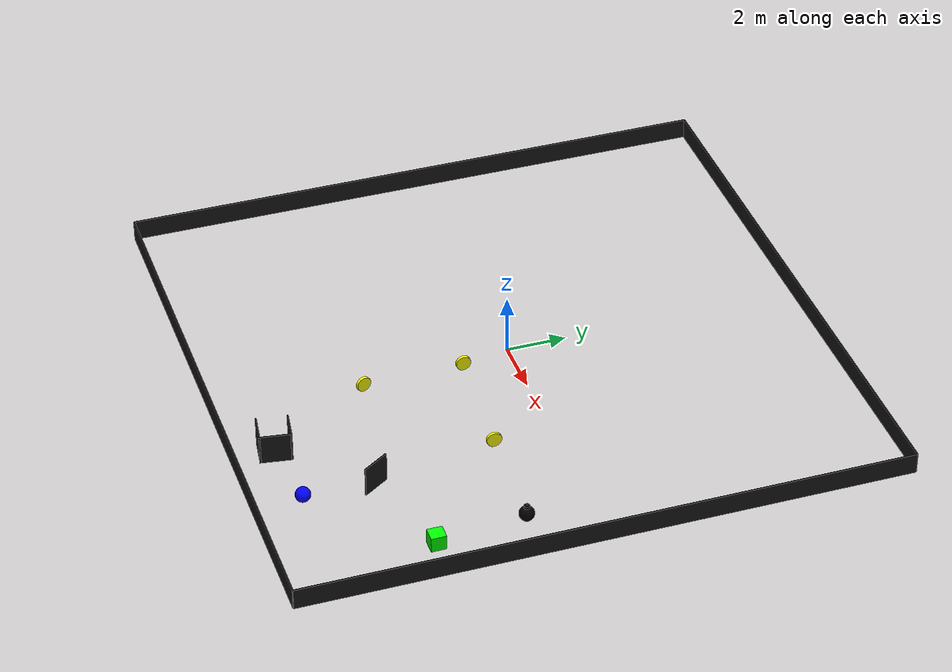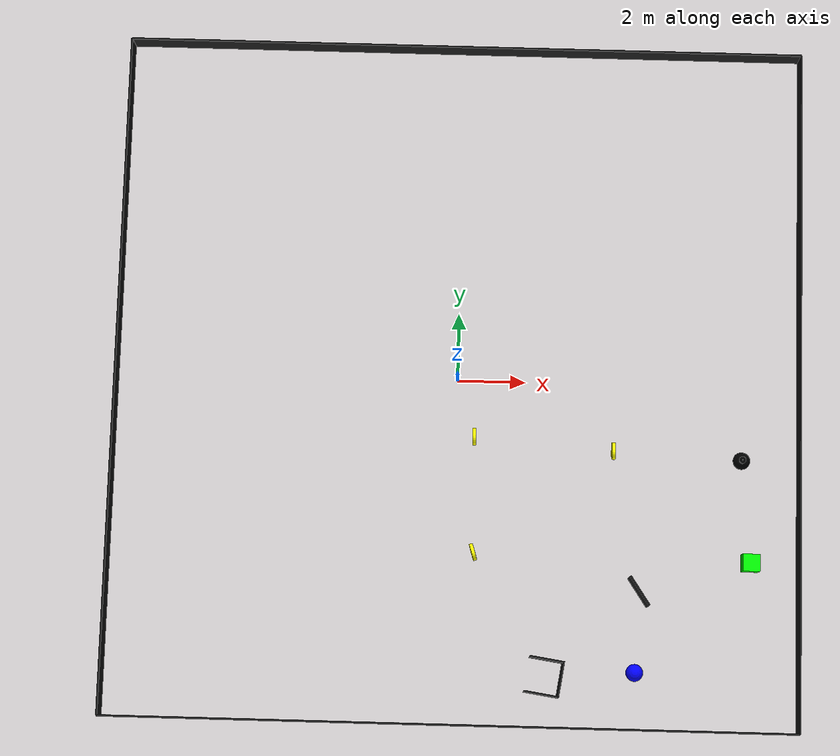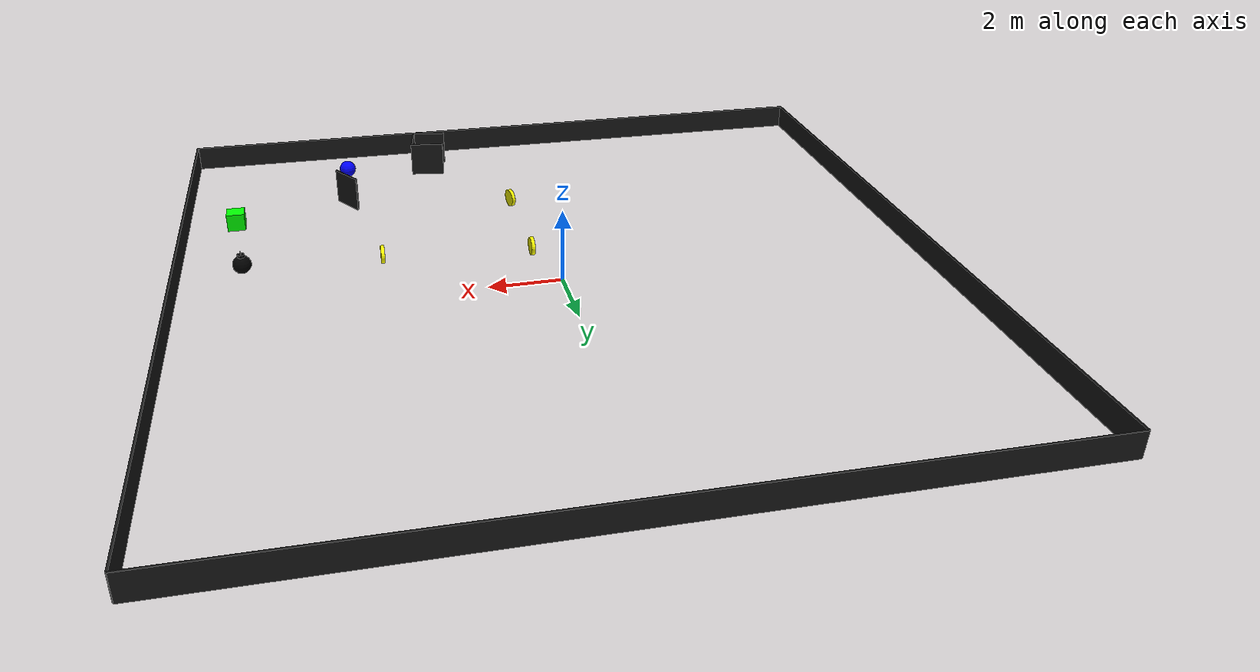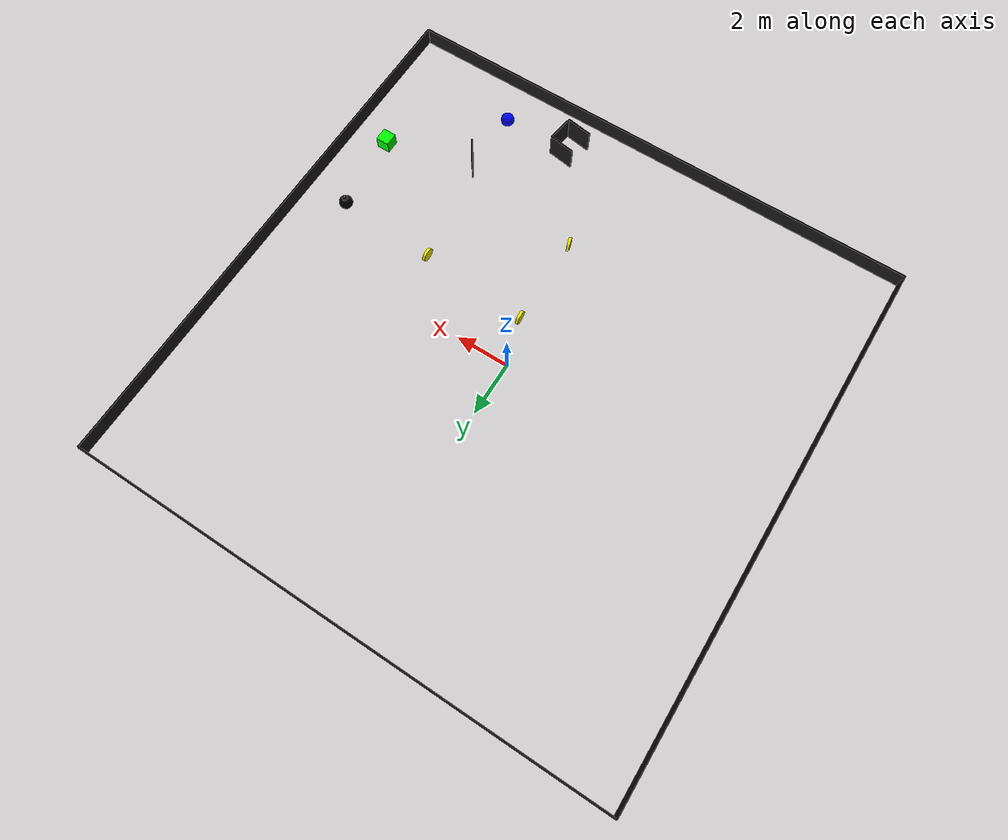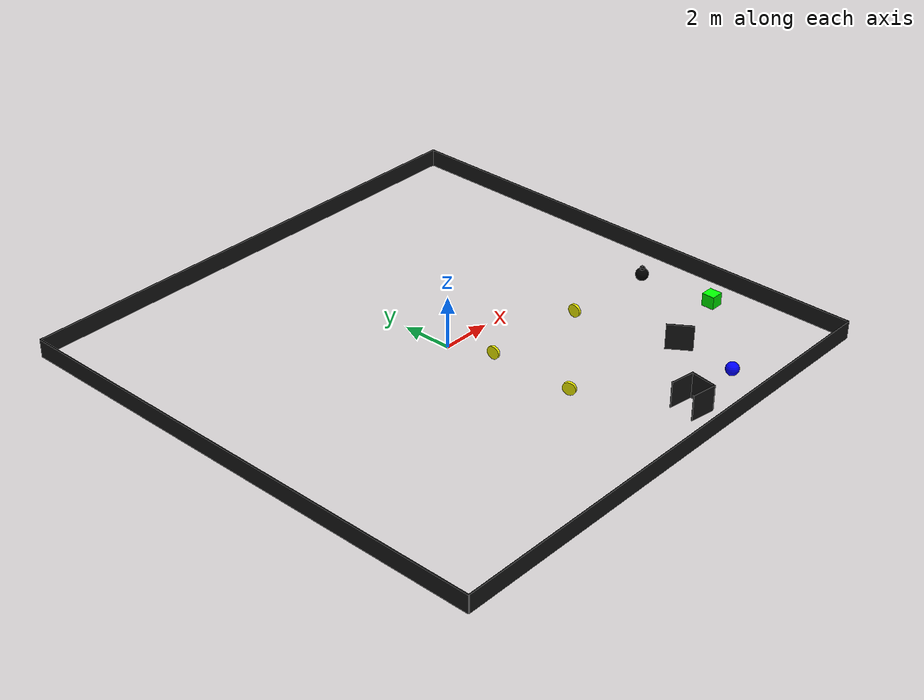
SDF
<sdf version="1.6">
 <world name="default">
  <model name="borders">
   <static>1</static>
   <link name="chassis_pos_x">
    <pose>10 0 0.35 0 -0 1.57079</pose>
    <collision name="collision_pos_x"><geometry><box><size>20 0.05 0.7</size></box></geometry></collision>
    <visual name="visual">
     <geometry><box><size>20 0.05 0.7</size></box></geometry>
     <material>
      <ambient>0.1 0.1 0.1 1</ambient>
      <diffuse>0.1 0.1 0.1 1</diffuse>
      <specular>0.1 0.1 0.1 1</specular>
      <emissive>0 0 0 0</emissive>
     </material>
    </visual>
    <sensor name="contact_sensor_1" type="contact">
     <plugin name="my_contact_plugin" filename="libgazebo_ros_bumper.so">
      <bumperTopicName>border_bumper</bumperTopicName>
      <frameName>world</frameName>
     </plugin>
     <contact><collision>collision_pos_x</collision><topic>__default_topic__</topic></contact>
    </sensor>
   </link>
   <link name="chassis_neg_x">
    <pose>-10 0 0.35 0 -0 1.57079</pose>
    <collision name="collision_neg_x"><geometry><box><size>20 0.05 0.7</size></box></geometry></collision>
    <visual name="visual">
     <geometry><box><size>20 0.05 0.7</size></box></geometry>
     <material>
      <ambient>0.1 0.1 0.1 1</ambient>
      <diffuse>0.1 0.1 0.1 1</diffuse>
      <specular>0.1 0.1 0.1 1</specular>
      <emissive>0 0 0 0</emissive>
     </material>
    </visual>
    <sensor name="contact_sensor_2" type="contact">
     <plugin name="my_contact_plugin" filename="libgazebo_ros_bumper.so">
      <bumperTopicName>border_bumper</bumperTopicName>
      <frameName>world</frameName>
     </plugin>
     <contact><collision>collision_neg_x</collision><topic>__default_topic__</topic></contact>
    </sensor>
   </link>
   <link name="chassis_pos_y">
    <pose>0 10 0.35 0 -0 0</pose>
    <collision name="collision_pos_y"><geometry><box><size>20 0.05 0.7</size></box></geometry></collision>
    <visual name="visual">
     <geometry><box><size>20 0.05 0.7</size></box></geometry>
     <material>
      <ambient>0.1 0.1 0.1 1</ambient>
      <diffuse>0.1 0.1 0.1 1</diffuse>
      <specular>0.1 0.1 0.1 1</specular>
      <emissive>0 0 0 0</emissive>
     </material>
    </visual>
    <sensor name="contact_sensor_3" type="contact">
     <plugin name="my_contact_plugin" filename="libgazebo_ros_bumper.so">
      <bumperTopicName>border_bumper</bumperTopicName>
      <frameName>world</frameName>
     </plugin>
     <contact><collision>collision_pos_y</collision><topic>__default_topic__</topic></contact>
    </sensor>
   </link>
   <link name="chassis_neg_y">
    <pose>0 -10 0.35 0 -0 0</pose>
    <collision name="collision_neg_y"><geometry><box><size>20 0.05 0.7</size></box></geometry></collision>
    <visual name="visual">
     <geometry><box><size>20 0.05 0.7</size></box></geometry>
     <material>
      <ambient>0.1 0.1 0.1 1</ambient>
      <diffuse>0.1 0.1 0.1 1</diffuse>
      <specular>0.1 0.1 0.1 1</specular>
      <emissive>0 0 0 0</emissive>
     </material>
    </visual>
    <sensor name="contact_sensor_4" type="contact">
     <plugin name="my_contact_plugin" filename="libgazebo_ros_bumper.so">
      <bumperTopicName>border_bumper</bumperTopicName>
      <frameName>world</frameName>
     </plugin>
     <contact><collision>collision_neg_y</collision><topic>__default_topic__</topic></contact>
    </sensor>
   </link>
  </model>
  <model name="coin_1">
   <link name="chassis">
    <pose>0 0 0.26 0 -0 0</pose>
    <collision name="box_collision">
     <geometry><sphere><radius>0.25</radius></sphere></geometry>
     <surface>
      <contact><collide_bitmask>1</collide_bitmask><ode><min_depth>10</min_depth><kp>1</kp></ode></contact>
     </surface>
    </collision>
    <visual name="visual">
     <pose>0 0 0 0 1.57 0</pose>
     <geometry><cylinder><radius>0.25</radius><length>0.1</length></cylinder></geometry>
     <material>
      <ambient>1 1 0 1</ambient>
      <diffuse>1 1 0 1</diffuse>
      <specular>0.1 0.1 0.1 1</specular>
      <emissive>0 0 0 0</emissive>
     </material>
    </visual>
    <sensor name="contact_sensor_1" type="contact">
     <plugin name="my_contact_plugin" filename="libgazebo_ros_bumper.so">
      <bumperTopicName>coin_bumper</bumperTopicName>
      <frameName>world</frameName>
     </plugin>
     <contact><collision>box_collision</collision><topic>__default_topic__</topic></contact>
    </sensor>
    <inertial>
     <inertia><ixx>1</ixx><ixy>0</ixy><ixz>0</ixz><iyy>1</iyy><iyz>0</iyz><izz>1</izz></inertia>
     <mass>1</mass>
    </inertial>
   </link>
   <joint name="coin_hinge" type="revolute">
    <pose>0 0 0.26 0 -0 0</pose>
    <child>chassis</child>
    <parent>world</parent>
    <axis>
     <xyz>0 0 1</xyz>
     <use_parent_model_frame>1</use_parent_model_frame>
     <limit><lower>-1e+16</lower><upper>1e+16</upper></limit>
     <dynamics><spring_reference>0</spring_reference><spring_stiffness>0</spring_stiffness></dynamics>
    </axis>
   </joint>
   <pose>0.535499 -1.67279 0 0 0 -3.09345</pose>
  </model>
  <model name="coin_2">
   <link name="chassis">
    <pose>0 0 0.26 0 -0 0</pose>
    <collision name="box_collision">
     <geometry><sphere><radius>0.25</radius></sphere></geometry>
     <surface>
      <contact><collide_bitmask>1</collide_bitmask><ode><min_depth>10</min_depth><kp>1</kp></ode></contact>
     </surface>
    </collision>
    <visual name="visual">
     <pose>0 0 0 0 1.57 0</pose>
     <geometry><cylinder><radius>0.25</radius><length>0.1</length></cylinder></geometry>
     <material>
      <ambient>1 1 0 1</ambient>
      <diffuse>1 1 0 1</diffuse>
      <specular>0.1 0.1 0.1 1</specular>
      <emissive>0 0 0 0</emissive>
     </material>
    </visual>
    <sensor name="contact_sensor_1" type="contact">
     <plugin name="my_contact_plugin" filename="libgazebo_ros_bumper.so">
      <bumperTopicName>coin_bumper</bumperTopicName>
      <frameName>world</frameName>
     </plugin>
     <contact><collision>box_collision</collision><topic>__default_topic__</topic></contact>
    </sensor>
    <inertial>
     <inertia><ixx>1</ixx><ixy>0</ixy><ixz>0</ixz><iyy>1</iyy><iyz>0</iyz><izz>1</izz></inertia>
     <mass>1</mass>
    </inertial>
   </link>
   <joint name="coin_hinge" type="revolute">
    <pose>0 0 0.26 0 -0 0</pose>
    <child>chassis</child>
    <parent>world</parent>
    <axis>
     <xyz>0 0 1</xyz>
     <use_parent_model_frame>1</use_parent_model_frame>
     <limit><lower>-1e+16</lower><upper>1e+16</upper></limit>
     <dynamics><spring_reference>0</spring_reference><spring_stiffness>0</spring_stiffness></dynamics>
    </axis>
   </joint>
   <pose>0.581038 -5.03889 0 0 0 -2.85301</pose>
  </model>
  <model name="wall_1_0">
   <static>1</static>
   <link name="chassis">
    <pose>0 0 0.5 0 -0 0</pose>
    <collision name="barrier_collision"><geometry><box><size>1 0.05 1</size></box></geometry></collision>
    <visual name="visual">
     <geometry><box><size>1 0.05 1</size></box></geometry>
     <material>
      <ambient>0.1 0.1 0.1 1</ambient>
      <diffuse>0.1 0.1 0.1 1</diffuse>
      <specular>0.1 0.1 0.1 1</specular>
      <emissive>0 0 0 0</emissive>
     </material>
    </visual>
    <sensor name="contact_sensor_1" type="contact">
     <plugin name="my_contact_plugin" filename="libgazebo_ros_bumper.so">
      <bumperTopicName>obstacle_bumper</bumperTopicName>
      <frameName>world</frameName>
     </plugin>
     <contact><collision>barrier_collision</collision><topic>__default_topic__</topic></contact>
    </sensor>
   </link>
   <pose>5.37964 -6.06897 0 0 0 -0.982297</pose>
  </model>
  <model name="wall_3_0">
   <static>1</static>
   <link name="chassis">
    <pose>0 0 0.5 0 -0 0</pose>
    <collision name="collision"><geometry><box><size>1 0.05 1</size></box></geometry></collision>
    <visual name="visual">
     <geometry><box><size>1 0.05 1</size></box></geometry>
     <material>
      <ambient>0.1 0.1 0.1 1</ambient>
      <diffuse>0.1 0.1 0.1 1</diffuse>
      <specular>0.1 0.1 0.1 1</specular>
      <emissive>0 0 0 0</emissive>
     </material>
    </visual>
    <collision name="collision2">
     <pose>-0.475 0.525 0 0 -0 1.57</pose>
     <geometry><box><size>1 0.05 1</size></box></geometry>
    </collision>
    <visual name="visual2">
     <pose>-0.475 0.525 0 0 -0 1.57</pose>
     <geometry><box><size>1 0.05 1</size></box></geometry>
     <material>
      <ambient>0.1 0.1 0.1 1</ambient>
      <diffuse>0.1 0.1 0.1 1</diffuse>
      <specular>0.1 0.1 0.1 1</specular>
      <emissive>0 0 0 0</emissive>
     </material>
    </visual>
    <collision name="collision3">
     <pose>0 1 0 0 -0 0</pose>
     <geometry><box><size>1 0.05 1</size></box></geometry>
    </collision>
    <visual name="visual3">
     <pose>0 1 0 0 -0 0</pose>
     <geometry><box><size>1 0.05 1</size></box></geometry>
     <material>
      <ambient>0.1 0.1 0.1 1</ambient>
      <diffuse>0.1 0.1 0.1 1</diffuse>
      <specular>0.1 0.1 0.1 1</specular>
      <emissive>0 0 0 0</emissive>
     </material>
    </visual>
    <sensor name="contact_sensor_1" type="contact">
     <plugin name="my_contact_plugin" filename="libgazebo_ros_bumper.so">
      <bumperTopicName>obstacle_bumper</bumperTopicName>
      <frameName>world</frameName>
     </plugin>
     <contact><collision>collision</collision><topic>__default_topic__</topic></contact>
    </sensor>
    <sensor name="contact_sensor_2" type="contact">
     <plugin name="my_contact_plugin" filename="libgazebo_ros_bumper.so">
      <bumperTopicName>obstacle_bumper</bumperTopicName>
      <frameName>world</frameName>
     </plugin>
     <contact><collision>collision2</collision><topic>__default_topic__</topic></contact>
    </sensor>
    <sensor name="contact_sensor_3" type="contact">
     <plugin name="my_contact_plugin" filename="libgazebo_ros_bumper.so">
      <bumperTopicName>obstacle_bumper</bumperTopicName>
      <frameName>world</frameName>
     </plugin>
     <contact><collision>collision3</collision><topic>__default_topic__</topic></contact>
    </sensor>
   </link>
   <pose>2.77335 -8.07554 0 0 -0 2.99118</pose>
  </model>
  <model name="bomb_5">
   <link name="chassis">
    <pose>0 0 0.25 0 -0 0</pose>
    <collision name="box_collision">
     <geometry><sphere><radius>0.25</radius></sphere></geometry>
     <surface>
      <contact><collide_bitmask>1</collide_bitmask><ode><min_depth>10</min_depth><kp>1</kp></ode></contact>
     </surface>
    </collision>
    <visual name="visual">
     <pose>0 0 0.2 0 -0 0</pose>
     <geometry><cylinder><radius>0.1</radius><length>0.2</length></cylinder></geometry>
     <material>
      <ambient>0 0 0 1</ambient>
      <diffuse>0 0 0 1</diffuse>
      <specular>0.1 0.1 0.1 1</specular>
      <emissive>0 0 0 0</emissive>
     </material>
    </visual>
    <visual name="visual2">
     <geometry><sphere><radius>0.25</radius></sphere></geometry>
     <material>
      <ambient>0 0 0 1</ambient>
      <diffuse>0 0 0 1</diffuse>
      <specular>0.1 0.1 0.1 1</specular>
      <emissive>0 0 0 0</emissive>
     </material>
    </visual>
    <visual name="visual3">
     <pose>0 0 0.3 0 -0 0</pose>
     <geometry><cylinder><radius>0.01</radius><length>0.2</length></cylinder></geometry>
     <material>
      <ambient>1 1 1 1</ambient>
      <diffuse>1 1 1 1</diffuse>
      <specular>0.1 0.1 0.1 1</specular>
      <emissive>0 0 0 0</emissive>
     </material>
    </visual>
    <sensor name="contact_sensor_1" type="contact">
     <plugin name="my_contact_plugin" filename="libgazebo_ros_bumper.so">
      <bumperTopicName>bomb_bumper</bumperTopicName>
      <frameName>world</frameName>
     </plugin>
     <contact><collision>box_collision</collision><topic>__default_topic__</topic></contact>
    </sensor>
    <inertial>
     <inertia><ixx>1</ixx><ixy>0</ixy><ixz>0</ixz><iyy>1</iyy><iyz>0</iyz><izz>1</izz></inertia>
     <mass>1</mass>
    </inertial>
   </link>
   <joint name="bomb_hinge" type="revolute">
    <pose>0 0 0.2 0 -0 0</pose>
    <child>chassis</child>
    <parent>world</parent>
    <axis>
     <xyz>0 0 0</xyz>
     <use_parent_model_frame>1</use_parent_model_frame>
     <limit><lower>-1e+16</lower><upper>1e+16</upper></limit>
     <dynamics><spring_reference>0</spring_reference><spring_stiffness>0</spring_stiffness></dynamics>
    </axis>
   </joint>
   <pose>8.33782 -2.17598 0 0 -0 0</pose>
  </model>
  <model name="coin_0">
   <link name="chassis">
    <pose>0 0 0.26 0 -0 0</pose>
    <collision name="box_collision">
     <geometry><sphere><radius>0.25</radius></sphere></geometry>
     <surface>
      <contact><collide_bitmask>1</collide_bitmask><ode><min_depth>10</min_depth><kp>1</kp></ode></contact>
     </surface>
    </collision>
    <visual name="visual">
     <pose>0 0 0 0 1.57 0</pose>
     <geometry><cylinder><radius>0.25</radius><length>0.1</length></cylinder></geometry>
     <material>
      <ambient>1 1 0 1</ambient>
      <diffuse>1 1 0 1</diffuse>
      <specular>0.1 0.1 0.1 1</specular>
      <emissive>0 0 0 0</emissive>
     </material>
    </visual>
    <sensor name="contact_sensor_1" type="contact">
     <plugin name="my_contact_plugin" filename="libgazebo_ros_bumper.so">
      <bumperTopicName>coin_bumper</bumperTopicName>
      <frameName>world</frameName>
     </plugin>
     <contact><collision>box_collision</collision><topic>__default_topic__</topic></contact>
    </sensor>
    <inertial>
     <inertia><ixx>1</ixx><ixy>0</ixy><ixz>0</ixz><iyy>1</iyy><iyz>0</iyz><izz>1</izz></inertia>
     <mass>1</mass>
    </inertial>
   </link>
   <joint name="coin_hinge" type="revolute">
    <pose>0 0 0.26 0 -0 0</pose>
    <child>chassis</child>
    <parent>world</parent>
    <axis>
     <xyz>0 0 1</xyz>
     <use_parent_model_frame>1</use_parent_model_frame>
     <limit><lower>-1e+16</lower><upper>1e+16</upper></limit>
     <dynamics><spring_reference>0</spring_reference><spring_stiffness>0</spring_stiffness></dynamics>
    </axis>
   </joint>
   <pose>4.60746 -1.98293 0 0 -0 0</pose>
  </model>
  <model name="sphere_blue">
   <static>1</static>
   <link name="chassis">
    <pose>0 0 0.25 0 -0 0</pose>
    <collision name="collision"><geometry><sphere><radius>0.25</radius></sphere></geometry></collision>
    <visual name="visual">
     <geometry><sphere><radius>0.25</radius></sphere></geometry>
     <material>
      <ambient>0 0 1 1</ambient>
      <diffuse>0 0 1 1</diffuse>
      <specular>0.1 0.1 0.1 1</specular>
      <emissive>0 0 0 0</emissive>
     </material>
    </visual>
   </link>
   <pose>5.30382 -8.37998 0 0 -0 0</pose>
  </model>
  <model name="cube_green">
   <static>1</static>
   <link name="chassis">
    <pose>0 0 0.25 0 -0 0</pose>
    <collision name="collision"><geometry><box><size>0.5 0.5 0.5</size></box></geometry></collision>
    <visual name="visual">
     <geometry><box><size>0.5 0.5 0.5</size></box></geometry>
     <material>
      <ambient>0 1 0 1</ambient>
      <diffuse>0 1 0 1</diffuse>
      <specular>0.1 0.1 0.1 1</specular>
      <emissive>0 0 0 0</emissive>
     </material>
    </visual>
   </link>
   <pose>8.62224 -5.14107 0 0 -0 0</pose>
  </model>
 </world>
</sdf>
